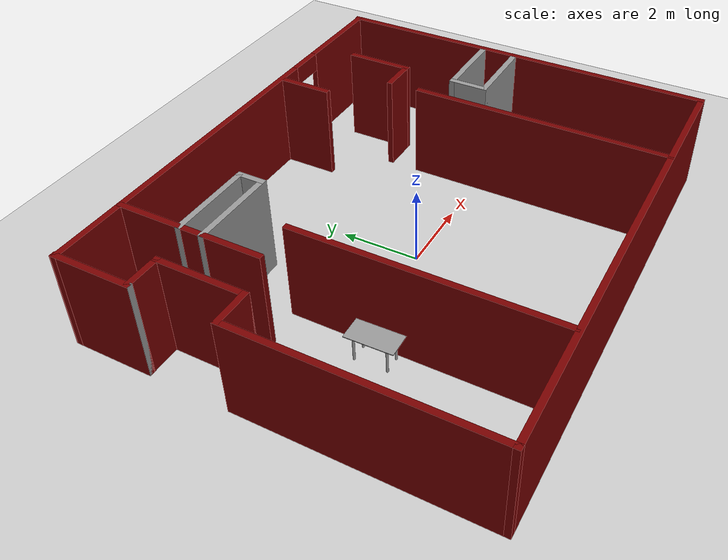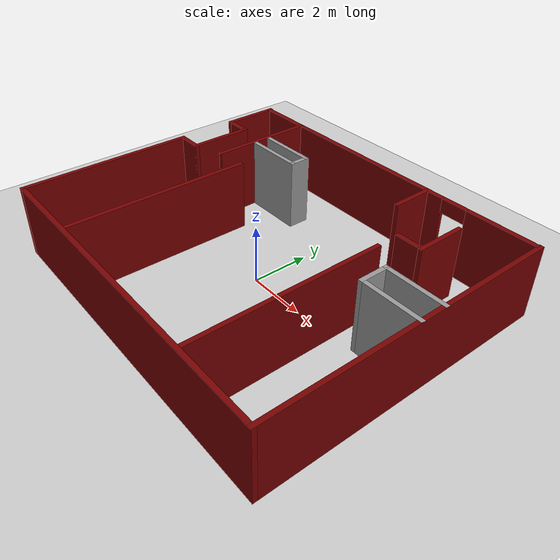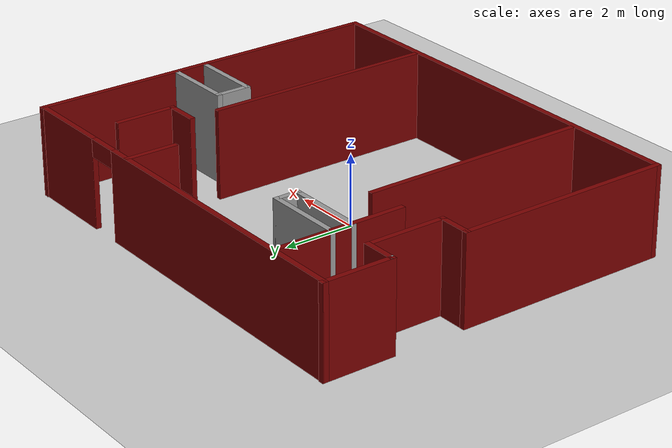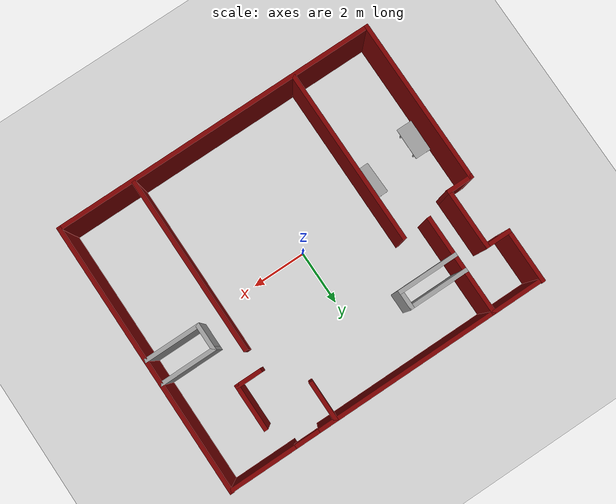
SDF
<sdf version="1.6">
 <world name="default">
  <model name="ground_plane">
   <static>1</static>
   <link name="link">
    <collision name="collision">
     <geometry><plane><normal>0 0 1</normal><size>100 100</size></plane></geometry>
     <surface>
      <contact><collide_bitmask>65535</collide_bitmask></contact>
      <friction><ode><mu>100</mu><mu2>50</mu2></ode></friction>
     </surface>
    </collision>
    <visual name="visual">
     <cast_shadows>0</cast_shadows>
     <geometry><plane><normal>0 0 1</normal><size>100 100</size></plane></geometry>
     <material>
      <script><uri>file://media/materials/scripts/gazebo.material</uri><name>Gazebo/Grey</name></script>
     </material>
    </visual>
   </link>
  </model>
  <model name="my_apartment">
   <pose>0.207005 0.14603 0 0 -0 0</pose>
   <link name="Wall_40">
    <pose>0 5 0 0 -0 0</pose>
    <visual name="Wall_40_Visual_0">
     <pose>-1.71889 0 1.25 0 -0 0</pose>
     <geometry><box><size>8.71223 0.15 2.5</size></box></geometry>
     <material>
      <script><uri>file://media/materials/scripts/gazebo.material</uri><name>Gazebo/Grey</name></script>
      <ambient>0.47451 0 0 1</ambient>
     </material>
     <meta><layer>0</layer></meta>
    </visual>
    <collision name="Wall_40_Collision_0">
     <geometry><box><size>8.71223 0.15 2.5</size></box></geometry>
     <pose>-1.71889 0 1.25 0 -0 0</pose>
    </collision>
    <visual name="Wall_40_Visual_1">
     <pose>4.80611 0 1.25 0 -0 0</pose>
     <geometry><box><size>2.53777 0.15 2.5</size></box></geometry>
     <material>
      <script><uri>file://media/materials/scripts/gazebo.material</uri><name>Gazebo/Grey</name></script>
      <ambient>0.47451 0 0 1</ambient>
     </material>
     <meta><layer>0</layer></meta>
    </visual>
    <collision name="Wall_40_Collision_1">
     <geometry><box><size>2.53777 0.15 2.5</size></box></geometry>
     <pose>4.80611 0 1.25 0 -0 0</pose>
    </collision>
    <visual name="Wall_40_Visual_2">
     <pose>3.08723 0 2.25 0 -0 0</pose>
     <geometry><box><size>0.9 0.15 0.5</size></box></geometry>
     <material>
      <script><uri>file://media/materials/scripts/gazebo.material</uri><name>Gazebo/Grey</name></script>
      <ambient>0.47451 0 0 1</ambient>
     </material>
     <meta><layer>0</layer></meta>
    </visual>
    <collision name="Wall_40_Collision_2">
     <geometry><box><size>0.9 0.15 0.5</size></box></geometry>
     <pose>3.08723 0 2.25 0 -0 0</pose>
    </collision>
   </link>
   <link name="Wall_41">
    <collision name="Wall_41_Collision">
     <geometry><box><size>10.1957 0.15 2.5</size></box></geometry>
     <pose>0 0 1.25 0 -0 0</pose>
    </collision>
    <visual name="Wall_41_Visual">
     <pose>0 0 1.25 0 -0 0</pose>
     <geometry><box><size>10.1957 0.15 2.5</size></box></geometry>
     <material>
      <script><uri>file://media/materials/scripts/gazebo.material</uri><name>Gazebo/Grey</name></script>
      <ambient>0.458824 0 0 1</ambient>
     </material>
     <meta><layer>0</layer></meta>
    </visual>
    <pose>6 0 0 0 0 -1.5708</pose>
   </link>
   <link name="Wall_42">
    <collision name="Wall_42_Collision">
     <geometry><box><size>12.15 0.15 2.5</size></box></geometry>
     <pose>0 0 1.25 0 -0 0</pose>
    </collision>
    <visual name="Wall_42_Visual">
     <pose>0 0 1.25 0 -0 0</pose>
     <geometry><box><size>12.15 0.15 2.5</size></box></geometry>
     <material>
      <script><uri>file://media/materials/scripts/gazebo.material</uri><name>Gazebo/Grey</name></script>
      <ambient>0.47451 0 0 1</ambient>
     </material>
     <meta><layer>0</layer></meta>
    </visual>
    <pose>0 -5.02287 0 0 -0 3.14159</pose>
   </link>
   <link name="Wall_43">
    <collision name="Wall_43_Collision">
     <geometry><box><size>6.15 0.15 2.5</size></box></geometry>
     <pose>0 0 1.25 0 -0 0</pose>
    </collision>
    <visual name="Wall_43_Visual">
     <pose>0 0 1.25 0 -0 0</pose>
     <geometry><box><size>6.15 0.15 2.5</size></box></geometry>
     <material>
      <script><uri>file://media/materials/scripts/gazebo.material</uri><name>Gazebo/Grey</name></script>
      <ambient>0.47451 0 0 1</ambient>
     </material>
     <meta><layer>0</layer></meta>
    </visual>
    <pose>-6 -2.02287 0 0 -0 1.5708</pose>
   </link>
   <link name="Wall_45">
    <collision name="Wall_45_Collision">
     <geometry><box><size>2.04574 0.15 2.5</size></box></geometry>
     <pose>0 0 1.25 0 -0 0</pose>
    </collision>
    <visual name="Wall_45_Visual">
     <pose>0 0 1.25 0 -0 0</pose>
     <geometry><box><size>2.04574 0.15 2.5</size></box></geometry>
     <material>
      <script><uri>file://media/materials/scripts/gazebo.material</uri><name>Gazebo/Grey</name></script>
      <ambient>0.47451 0 0 1</ambient>
     </material>
     <meta><layer>0</layer></meta>
    </visual>
    <pose>-6 4.075 0 0 0 -1.5708</pose>
   </link>
   <link name="Wall_47">
    <collision name="Wall_47_Collision">
     <geometry><box><size>0.15 0.15 2.5</size></box></geometry>
     <pose>0 0 1.25 0 -0 0</pose>
    </collision>
    <visual name="Wall_47_Visual">
     <pose>0 0 1.25 0 -0 0</pose>
     <geometry><box><size>0.15 0.15 2.5</size></box></geometry>
     <material>
      <script><uri>file://media/materials/scripts/gazebo.material</uri><name>Gazebo/Grey</name></script>
      <ambient>1 1 1 1</ambient>
     </material>
     <meta><layer>0</layer></meta>
    </visual>
    <pose>-6 3.12713 0 0 -0 0</pose>
   </link>
   <link name="Wall_51">
    <collision name="Wall_51_Collision">
     <geometry><box><size>1 0.15 2.5</size></box></geometry>
     <pose>0 0 1.25 0 -0 0</pose>
    </collision>
    <visual name="Wall_51_Visual">
     <pose>0 0 1.25 0 -0 0</pose>
     <geometry><box><size>1 0.15 2.5</size></box></geometry>
     <material>
      <script><uri>file://media/materials/scripts/gazebo.material</uri><name>Gazebo/Grey</name></script>
      <ambient>0.47451 0 0 1</ambient>
     </material>
     <meta><layer>0</layer></meta>
    </visual>
    <pose>-5.575 3.12713 0 0 -0 0</pose>
   </link>
   <link name="Wall_52">
    <collision name="Wall_52_Collision">
     <geometry><box><size>2.3 0.15 2.5</size></box></geometry>
     <pose>0 0 1.25 0 -0 0</pose>
    </collision>
    <visual name="Wall_52_Visual">
     <pose>0 0 1.25 0 -0 0</pose>
     <geometry><box><size>2.3 0.15 2.5</size></box></geometry>
     <material>
      <script><uri>file://media/materials/scripts/gazebo.material</uri><name>Gazebo/Grey</name></script>
      <ambient>0.47451 0 0 1</ambient>
     </material>
     <meta><layer>0</layer></meta>
    </visual>
    <pose>-5.15 2.05213 0 0 0 -1.5708</pose>
   </link>
   <link name="Wall_54">
    <collision name="Wall_54_Collision">
     <geometry><box><size>1 0.15 2.5</size></box></geometry>
     <pose>0 0 1.25 0 -0 0</pose>
    </collision>
    <visual name="Wall_54_Visual">
     <pose>0 0 1.25 0 -0 0</pose>
     <geometry><box><size>1 0.15 2.5</size></box></geometry>
     <material>
      <script><uri>file://media/materials/scripts/gazebo.material</uri><name>Gazebo/Grey</name></script>
      <ambient>0.47451 0 0 1</ambient>
     </material>
     <meta><layer>0</layer></meta>
    </visual>
    <pose>-5.575 0.97713 0 0 -0 0</pose>
   </link>
   <link name="Wall_56">
    <collision name="Wall_56_Collision">
     <geometry><box><size>3.75 0.15 2.5</size></box></geometry>
     <pose>0 0 1.25 0 -0 0</pose>
    </collision>
    <visual name="Wall_56_Visual">
     <pose>0 0 1.25 0 -0 0</pose>
     <geometry><box><size>3.75 0.15 2.5</size></box></geometry>
     <material>
      <script><uri>file://media/materials/scripts/gazebo.material</uri><name>Gazebo/Grey</name></script>
      <ambient>0.47451 0 0 1</ambient>
     </material>
     <meta><layer>0</layer></meta>
    </visual>
    <pose>-4.10991 3.17189 0 0 0 -1.5708</pose>
   </link>
   <link name="Wall_58">
    <collision name="Wall_58_Collision">
     <geometry><box><size>2.25 0.15 2.5</size></box></geometry>
     <pose>0 0 1.25 0 -0 0</pose>
    </collision>
    <visual name="Wall_58_Visual">
     <pose>0 0 1.25 0 -0 0</pose>
     <geometry><box><size>2.25 0.15 2.5</size></box></geometry>
     <material>
      <script><uri>file://media/materials/scripts/gazebo.material</uri><name>Gazebo/Grey</name></script>
      <ambient>1 1 1 1</ambient>
     </material>
     <meta><layer>0</layer></meta>
    </visual>
    <pose>-3.05992 3.39189 0 0 -0 0</pose>
   </link>
   <link name="Wall_59">
    <collision name="Wall_59_Collision">
     <geometry><box><size>0.75 0.15 2.5</size></box></geometry>
     <pose>0 0 1.25 0 -0 0</pose>
    </collision>
    <visual name="Wall_59_Visual">
     <pose>0 0 1.25 0 -0 0</pose>
     <geometry><box><size>0.75 0.15 2.5</size></box></geometry>
     <material>
      <script><uri>file://media/materials/scripts/gazebo.material</uri><name>Gazebo/Grey</name></script>
      <ambient>1 1 1 1</ambient>
     </material>
     <meta><layer>0</layer></meta>
    </visual>
    <pose>-2.00991 3.09189 0 0 0 -1.5708</pose>
   </link>
   <link name="Wall_60">
    <collision name="Wall_60_Collision">
     <geometry><box><size>2.25 0.15 2.5</size></box></geometry>
     <pose>0 0 1.25 0 -0 0</pose>
    </collision>
    <visual name="Wall_60_Visual">
     <pose>0 0 1.25 0 -0 0</pose>
     <geometry><box><size>2.25 0.15 2.5</size></box></geometry>
     <material>
      <script><uri>file://media/materials/scripts/gazebo.material</uri><name>Gazebo/Grey</name></script>
      <ambient>1 1 1 1</ambient>
     </material>
     <meta><layer>0</layer></meta>
    </visual>
    <pose>-3.05992 2.79189 0 0 -0 3.14159</pose>
   </link>
   <link name="Wall_62">
    <collision name="Wall_62_Collision">
     <geometry><box><size>6.5 0.15 2.5</size></box></geometry>
     <pose>0 0 1.25 0 -0 0</pose>
    </collision>
    <visual name="Wall_62_Visual">
     <pose>0 0 1.25 0 -0 0</pose>
     <geometry><box><size>6.5 0.15 2.5</size></box></geometry>
     <material>
      <script><uri>file://media/materials/scripts/gazebo.material</uri><name>Gazebo/Grey</name></script>
      <ambient>0.47451 0 0 1</ambient>
     </material>
     <meta><layer>0</layer></meta>
    </visual>
    <pose>-3.076 -1.78087 0 0 0 -1.5708</pose>
   </link>
   <link name="Wall_64">
    <collision name="Wall_64_Collision">
     <geometry><box><size>1.5 0.15 2.5</size></box></geometry>
     <pose>0 0 1.25 0 -0 0</pose>
    </collision>
    <visual name="Wall_64_Visual">
     <pose>0 0 1.25 0 -0 0</pose>
     <geometry><box><size>1.5 0.15 2.5</size></box></geometry>
     <material>
      <script><uri>file://media/materials/scripts/gazebo.material</uri><name>Gazebo/Grey</name></script>
      <ambient>0.47451 0 0 1</ambient>
     </material>
     <meta><layer>0</layer></meta>
    </visual>
    <pose>2 4.31413 0 0 0 -1.5708</pose>
   </link>
   <link name="Wall_66">
    <collision name="Wall_66_Collision">
     <geometry><box><size>1.75 0.15 2.5</size></box></geometry>
     <pose>0 0 1.25 0 -0 0</pose>
    </collision>
    <visual name="Wall_66_Visual">
     <pose>0 0 1.25 0 -0 0</pose>
     <geometry><box><size>1.75 0.15 2.5</size></box></geometry>
     <material>
      <script><uri>file://media/materials/scripts/gazebo.material</uri><name>Gazebo/Grey</name></script>
      <ambient>0.47451 0 0 1</ambient>
     </material>
     <meta><layer>0</layer></meta>
    </visual>
    <pose>4.02154 3.18013 0 0 0 -1.5708</pose>
   </link>
   <link name="Wall_68">
    <collision name="Wall_68_Collision">
     <geometry><box><size>1 0.15 2.5</size></box></geometry>
     <pose>0 0 1.25 0 -0 0</pose>
    </collision>
    <visual name="Wall_68_Visual">
     <pose>0 0 1.25 0 -0 0</pose>
     <geometry><box><size>1 0.15 2.5</size></box></geometry>
     <material>
      <script><uri>file://media/materials/scripts/gazebo.material</uri><name>Gazebo/Grey</name></script>
      <ambient>0.47451 0 0 1</ambient>
     </material>
     <meta><layer>0</layer></meta>
    </visual>
    <pose>3.59653 2.38014 0 0 -0 3.14159</pose>
   </link>
   <link name="Wall_70">
    <collision name="Wall_70_Collision">
     <geometry><box><size>6.7 0.15 2.5</size></box></geometry>
     <pose>0 0 1.25 0 -0 0</pose>
    </collision>
    <visual name="Wall_70_Visual">
     <pose>0 0 1.25 0 -0 0</pose>
     <geometry><box><size>6.7 0.15 2.5</size></box></geometry>
     <material>
      <script><uri>file://media/materials/scripts/gazebo.material</uri><name>Gazebo/Grey</name></script>
      <ambient>0.458824 0 0 1</ambient>
     </material>
     <meta><layer>0</layer></meta>
    </visual>
    <pose>3.17 -1.74787 0 0 0 -1.5708</pose>
   </link>
   <link name="Wall_72">
    <collision name="Wall_72_Collision">
     <geometry><box><size>2.15 0.15 2.5</size></box></geometry>
     <pose>0 0 1.25 0 -0 0</pose>
    </collision>
    <visual name="Wall_72_Visual">
     <pose>0 0 1.25 0 -0 0</pose>
     <geometry><box><size>2.15 0.15 2.5</size></box></geometry>
     <material>
      <script><uri>file://media/materials/scripts/gazebo.material</uri><name>Gazebo/Grey</name></script>
      <ambient>1 1 1 1</ambient>
     </material>
     <meta><layer>0</layer></meta>
    </visual>
    <pose>5 0.97713 0 0 -0 3.14159</pose>
   </link>
   <link name="Wall_73">
    <collision name="Wall_73_Collision">
     <geometry><box><size>1.05 0.15 2.5</size></box></geometry>
     <pose>0 0 1.25 0 -0 0</pose>
    </collision>
    <visual name="Wall_73_Visual">
     <pose>0 0 1.25 0 -0 0</pose>
     <geometry><box><size>1.05 0.15 2.5</size></box></geometry>
     <material>
      <script><uri>file://media/materials/scripts/gazebo.material</uri><name>Gazebo/Grey</name></script>
      <ambient>1 1 1 1</ambient>
     </material>
     <meta><layer>0</layer></meta>
    </visual>
    <pose>4 0.52713 0 0 0 -1.5708</pose>
   </link>
   <link name="Wall_74">
    <collision name="Wall_74_Collision">
     <geometry><box><size>2.15 0.15 2.5</size></box></geometry>
     <pose>0 0 1.25 0 -0 0</pose>
    </collision>
    <visual name="Wall_74_Visual">
     <pose>0 0 1.25 0 -0 0</pose>
     <geometry><box><size>2.15 0.15 2.5</size></box></geometry>
     <material>
      <script><uri>file://media/materials/scripts/gazebo.material</uri><name>Gazebo/Grey</name></script>
      <ambient>1 1 1 1</ambient>
     </material>
     <meta><layer>0</layer></meta>
    </visual>
    <pose>5 0.07713 0 0 -0 0</pose>
   </link>
   <static>1</static>
  </model>
  <model name="desk_1">
   <link name="link_0">
    <pose>-0.4 -0.2 -0.068 0 -0 0</pose>
    <inertial>
     <mass>1</mass>
     <inertia><ixx>0.145833</ixx><ixy>0</ixy><ixz>0</ixz><iyy>0.145833</iyy><iyz>0</iyz><izz>0.125</izz></inertia>
    </inertial>
    <visual name="visual">
     <geometry><cylinder><radius>0.03</radius><length>0.67</length></cylinder></geometry>
     <material>
      <lighting>1</lighting>
      <script><uri>file://media/materials/scripts/gazebo.material</uri><name>Gazebo/Grey</name></script>
      <shader type="pixel"><normal_map>__default__</normal_map></shader>
      <ambient>0.3 0.3 0.3 1</ambient>
      <diffuse>0.7 0.7 0.7 1</diffuse>
      <specular>0.01 0.01 0.01 1</specular>
      <emissive>0 0 0 1</emissive>
     </material>
    </visual>
    <collision name="collision">
     <geometry><cylinder><radius>0.03</radius><length>0.67</length></cylinder></geometry>
     <surface>
      <friction>
       <ode><mu>1</mu><mu2>1</mu2><fdir1>0 0 0</fdir1><slip1>0</slip1><slip2>0</slip2></ode>
       <torsional>
        <coefficient>1</coefficient>
        <patch_radius>0</patch_radius>
        <surface_radius>0</surface_radius>
        <use_patch_radius>1</use_patch_radius>
        <ode><slip>0</slip></ode>
       </torsional>
      </friction>
      <bounce><restitution_coefficient>0</restitution_coefficient><threshold>1e+06</threshold></bounce>
      <contact>
       <collide_without_contact>0</collide_without_contact>
       <collide_without_contact_bitmask>1</collide_without_contact_bitmask>
       <collide_bitmask>1</collide_bitmask>
       <ode>
        <soft_cfm>0</soft_cfm>
        <soft_erp>0.2</soft_erp>
        <kp>1e+13</kp>
        <kd>1</kd>
        <max_vel>0.01</max_vel>
        <min_depth>0</min_depth>
       </ode>
       <bullet>
        <split_impulse>1</split_impulse>
        <split_impulse_penetration_threshold>-0.01</split_impulse_penetration_threshold>
        <soft_cfm>0</soft_cfm>
        <soft_erp>0.2</soft_erp>
        <kp>1e+13</kp>
        <kd>1</kd>
       </bullet>
      </contact>
     </surface>
    </collision>
   </link>
   <link name="link_0_clone">
    <pose>-0.4 0.2 -0.068 0 -0 0</pose>
    <inertial>
     <mass>1</mass>
     <inertia><ixx>0.145833</ixx><ixy>0</ixy><ixz>0</ixz><iyy>0.145833</iyy><iyz>0</iyz><izz>0.125</izz></inertia>
    </inertial>
    <visual name="visual">
     <geometry><cylinder><radius>0.03</radius><length>0.67</length></cylinder></geometry>
     <material>
      <lighting>1</lighting>
      <script><uri>file://media/materials/scripts/gazebo.material</uri><name>Gazebo/Grey</name></script>
      <shader type="pixel"><normal_map>__default__</normal_map></shader>
      <ambient>0.3 0.3 0.3 1</ambient>
      <diffuse>0.7 0.7 0.7 1</diffuse>
      <specular>0.01 0.01 0.01 1</specular>
      <emissive>0 0 0 1</emissive>
     </material>
    </visual>
    <collision name="collision">
     <geometry><cylinder><radius>0.03</radius><length>0.67</length></cylinder></geometry>
     <surface>
      <friction>
       <ode><mu>1</mu><mu2>1</mu2><fdir1>0 0 0</fdir1><slip1>0</slip1><slip2>0</slip2></ode>
       <torsional>
        <coefficient>1</coefficient>
        <patch_radius>0</patch_radius>
        <surface_radius>0</surface_radius>
        <use_patch_radius>1</use_patch_radius>
        <ode><slip>0</slip></ode>
       </torsional>
      </friction>
      <bounce><restitution_coefficient>0</restitution_coefficient><threshold>1e+06</threshold></bounce>
      <contact>
       <collide_without_contact>0</collide_without_contact>
       <collide_without_contact_bitmask>1</collide_without_contact_bitmask>
       <collide_bitmask>1</collide_bitmask>
       <ode>
        <soft_cfm>0</soft_cfm>
        <soft_erp>0.2</soft_erp>
        <kp>1e+13</kp>
        <kd>1</kd>
        <max_vel>0.01</max_vel>
        <min_depth>0</min_depth>
       </ode>
       <bullet>
        <split_impulse>1</split_impulse>
        <split_impulse_penetration_threshold>-0.01</split_impulse_penetration_threshold>
        <soft_cfm>0</soft_cfm>
        <soft_erp>0.2</soft_erp>
        <kp>1e+13</kp>
        <kd>1</kd>
       </bullet>
      </contact>
     </surface>
    </collision>
   </link>
   <link name="link_0_clone_0">
    <pose>0.4 0.2 -0.068 0 -0 0</pose>
    <inertial>
     <mass>1</mass>
     <inertia><ixx>0.145833</ixx><ixy>0</ixy><ixz>0</ixz><iyy>0.145833</iyy><iyz>0</iyz><izz>0.125</izz></inertia>
    </inertial>
    <visual name="visual">
     <geometry><cylinder><radius>0.03</radius><length>0.67</length></cylinder></geometry>
     <material>
      <lighting>1</lighting>
      <script><uri>file://media/materials/scripts/gazebo.material</uri><name>Gazebo/Grey</name></script>
      <shader type="pixel"><normal_map>__default__</normal_map></shader>
      <ambient>0.3 0.3 0.3 1</ambient>
      <diffuse>0.7 0.7 0.7 1</diffuse>
      <specular>0.01 0.01 0.01 1</specular>
      <emissive>0 0 0 1</emissive>
     </material>
    </visual>
    <collision name="collision">
     <geometry><cylinder><radius>0.03</radius><length>0.67</length></cylinder></geometry>
     <surface>
      <friction>
       <ode><mu>1</mu><mu2>1</mu2><fdir1>0 0 0</fdir1><slip1>0</slip1><slip2>0</slip2></ode>
       <torsional>
        <coefficient>1</coefficient>
        <patch_radius>0</patch_radius>
        <surface_radius>0</surface_radius>
        <use_patch_radius>1</use_patch_radius>
        <ode><slip>0</slip></ode>
       </torsional>
      </friction>
      <bounce><restitution_coefficient>0</restitution_coefficient><threshold>1e+06</threshold></bounce>
      <contact>
       <collide_without_contact>0</collide_without_contact>
       <collide_without_contact_bitmask>1</collide_without_contact_bitmask>
       <collide_bitmask>1</collide_bitmask>
       <ode>
        <soft_cfm>0</soft_cfm>
        <soft_erp>0.2</soft_erp>
        <kp>1e+13</kp>
        <kd>1</kd>
        <max_vel>0.01</max_vel>
        <min_depth>0</min_depth>
       </ode>
       <bullet>
        <split_impulse>1</split_impulse>
        <split_impulse_penetration_threshold>-0.01</split_impulse_penetration_threshold>
        <soft_cfm>0</soft_cfm>
        <soft_erp>0.2</soft_erp>
        <kp>1e+13</kp>
        <kd>1</kd>
       </bullet>
      </contact>
     </surface>
    </collision>
   </link>
   <link name="link_0_clone_1">
    <pose>0.4 -0.2 -0.068 0 -0 0</pose>
    <inertial>
     <mass>1</mass>
     <inertia><ixx>0.145833</ixx><ixy>0</ixy><ixz>0</ixz><iyy>0.145833</iyy><iyz>0</iyz><izz>0.125</izz></inertia>
    </inertial>
    <visual name="visual">
     <geometry><cylinder><radius>0.03</radius><length>0.67</length></cylinder></geometry>
     <material>
      <lighting>1</lighting>
      <script><uri>file://media/materials/scripts/gazebo.material</uri><name>Gazebo/Grey</name></script>
      <shader type="pixel"><normal_map>__default__</normal_map></shader>
      <ambient>0.3 0.3 0.3 1</ambient>
      <diffuse>0.7 0.7 0.7 1</diffuse>
      <specular>0.01 0.01 0.01 1</specular>
      <emissive>0 0 0 1</emissive>
     </material>
    </visual>
    <collision name="collision">
     <geometry><cylinder><radius>0.03</radius><length>0.67</length></cylinder></geometry>
     <surface>
      <friction>
       <ode><mu>1</mu><mu2>1</mu2><fdir1>0 0 0</fdir1><slip1>0</slip1><slip2>0</slip2></ode>
       <torsional>
        <coefficient>1</coefficient>
        <patch_radius>0</patch_radius>
        <surface_radius>0</surface_radius>
        <use_patch_radius>1</use_patch_radius>
        <ode><slip>0</slip></ode>
       </torsional>
      </friction>
      <bounce><restitution_coefficient>0</restitution_coefficient><threshold>1e+06</threshold></bounce>
      <contact>
       <collide_without_contact>0</collide_without_contact>
       <collide_without_contact_bitmask>1</collide_without_contact_bitmask>
       <collide_bitmask>1</collide_bitmask>
       <ode>
        <soft_cfm>0</soft_cfm>
        <soft_erp>0.2</soft_erp>
        <kp>1e+13</kp>
        <kd>1</kd>
        <max_vel>0.01</max_vel>
        <min_depth>0</min_depth>
       </ode>
       <bullet>
        <split_impulse>1</split_impulse>
        <split_impulse_penetration_threshold>-0.01</split_impulse_penetration_threshold>
        <soft_cfm>0</soft_cfm>
        <soft_erp>0.2</soft_erp>
        <kp>1e+13</kp>
        <kd>1</kd>
       </bullet>
      </contact>
     </surface>
    </collision>
   </link>
   <link name="link_1">
    <pose>0 0 0.272 0 -0 0</pose>
    <inertial>
     <mass>1</mass>
     <inertia>
      <ixx>0.166667</ixx>
      <ixy>0</ixy>
      <ixz>0</ixz>
      <iyy>0.166667</iyy>
      <iyz>0</iyz>
      <izz>0.166667</izz>
     </inertia>
    </inertial>
    <visual name="visual">
     <geometry><box><size>1.2 0.6 0.02</size></box></geometry>
     <material>
      <lighting>1</lighting>
      <script><uri>file://media/materials/scripts/gazebo.material</uri><name>Gazebo/Grey</name></script>
      <shader type="pixel"><normal_map>__default__</normal_map></shader>
      <ambient>0.3 0.3 0.3 1</ambient>
      <diffuse>0.7 0.7 0.7 1</diffuse>
      <specular>0.01 0.01 0.01 1</specular>
      <emissive>0 0 0 1</emissive>
     </material>
    </visual>
    <collision name="collision">
     <geometry><box><size>1.2 0.6 0.02</size></box></geometry>
     <surface>
      <friction>
       <ode><mu>1</mu><mu2>1</mu2><fdir1>0 0 0</fdir1><slip1>0</slip1><slip2>0</slip2></ode>
       <torsional>
        <coefficient>1</coefficient>
        <patch_radius>0</patch_radius>
        <surface_radius>0</surface_radius>
        <use_patch_radius>1</use_patch_radius>
        <ode><slip>0</slip></ode>
       </torsional>
      </friction>
      <bounce><restitution_coefficient>0</restitution_coefficient><threshold>1e+06</threshold></bounce>
      <contact>
       <collide_without_contact>0</collide_without_contact>
       <collide_without_contact_bitmask>1</collide_without_contact_bitmask>
       <collide_bitmask>1</collide_bitmask>
       <ode>
        <soft_cfm>0</soft_cfm>
        <soft_erp>0.2</soft_erp>
        <kp>1e+13</kp>
        <kd>1</kd>
        <max_vel>0.01</max_vel>
        <min_depth>0</min_depth>
       </ode>
       <bullet>
        <split_impulse>1</split_impulse>
        <split_impulse_penetration_threshold>-0.01</split_impulse_penetration_threshold>
        <soft_cfm>0</soft_cfm>
        <soft_erp>0.2</soft_erp>
        <kp>1e+13</kp>
        <kd>1</kd>
       </bullet>
      </contact>
     </surface>
    </collision>
   </link>
   <joint name="link_1_JOINT_0" type="fixed">
    <parent>link_1</parent>
    <child>link_0</child>
    <physics>
     <ode><limit><cfm>0</cfm><erp>0.2</erp></limit><suspension><cfm>0</cfm><erp>0.2</erp></suspension></ode>
    </physics>
   </joint>
   <joint name="link_1_JOINT_1" type="fixed">
    <parent>link_1</parent>
    <child>link_0_clone</child>
    <physics>
     <ode><limit><cfm>0</cfm><erp>0.2</erp></limit><suspension><cfm>0</cfm><erp>0.2</erp></suspension></ode>
    </physics>
   </joint>
   <joint name="link_1_JOINT_2" type="fixed">
    <parent>link_1</parent>
    <child>link_0_clone_0</child>
    <physics>
     <ode><limit><cfm>0</cfm><erp>0.2</erp></limit><suspension><cfm>0</cfm><erp>0.2</erp></suspension></ode>
    </physics>
   </joint>
   <joint name="link_1_JOINT_3" type="fixed">
    <parent>link_1</parent>
    <child>link_0_clone_1</child>
    <physics>
     <ode><limit><cfm>0</cfm><erp>0.2</erp></limit><suspension><cfm>0</cfm><erp>0.2</erp></suspension></ode>
    </physics>
   </joint>
   <static>0</static>
   <pose>-5.31885 -1.11396 0.403 -1e-06 0 -1.58024</pose>
  </model>
  <model name="desk_2">
   <link name="link_0">
    <pose>-0.4 -0.2 -0.068 0 -0 0</pose>
    <inertial>
     <mass>1</mass>
     <inertia><ixx>0.145833</ixx><ixy>0</ixy><ixz>0</ixz><iyy>0.145833</iyy><iyz>0</iyz><izz>0.125</izz></inertia>
    </inertial>
    <visual name="visual">
     <geometry><cylinder><radius>0.03</radius><length>0.67</length></cylinder></geometry>
     <material>
      <lighting>1</lighting>
      <script><uri>file://media/materials/scripts/gazebo.material</uri><name>Gazebo/Grey</name></script>
      <shader type="pixel"><normal_map>__default__</normal_map></shader>
      <ambient>0.3 0.3 0.3 1</ambient>
      <diffuse>0.7 0.7 0.7 1</diffuse>
      <specular>0.01 0.01 0.01 1</specular>
      <emissive>0 0 0 1</emissive>
     </material>
    </visual>
    <collision name="collision">
     <geometry><cylinder><radius>0.03</radius><length>0.67</length></cylinder></geometry>
     <surface>
      <friction>
       <ode><mu>1</mu><mu2>1</mu2><fdir1>0 0 0</fdir1><slip1>0</slip1><slip2>0</slip2></ode>
       <torsional>
        <coefficient>1</coefficient>
        <patch_radius>0</patch_radius>
        <surface_radius>0</surface_radius>
        <use_patch_radius>1</use_patch_radius>
        <ode><slip>0</slip></ode>
       </torsional>
      </friction>
      <bounce><restitution_coefficient>0</restitution_coefficient><threshold>1e+06</threshold></bounce>
      <contact>
       <collide_without_contact>0</collide_without_contact>
       <collide_without_contact_bitmask>1</collide_without_contact_bitmask>
       <collide_bitmask>1</collide_bitmask>
       <ode>
        <soft_cfm>0</soft_cfm>
        <soft_erp>0.2</soft_erp>
        <kp>1e+13</kp>
        <kd>1</kd>
        <max_vel>0.01</max_vel>
        <min_depth>0</min_depth>
       </ode>
       <bullet>
        <split_impulse>1</split_impulse>
        <split_impulse_penetration_threshold>-0.01</split_impulse_penetration_threshold>
        <soft_cfm>0</soft_cfm>
        <soft_erp>0.2</soft_erp>
        <kp>1e+13</kp>
        <kd>1</kd>
       </bullet>
      </contact>
     </surface>
    </collision>
   </link>
   <link name="link_0_clone">
    <pose>-0.4 0.2 -0.068 0 -0 0</pose>
    <inertial>
     <mass>1</mass>
     <inertia><ixx>0.145833</ixx><ixy>0</ixy><ixz>0</ixz><iyy>0.145833</iyy><iyz>0</iyz><izz>0.125</izz></inertia>
    </inertial>
    <visual name="visual">
     <geometry><cylinder><radius>0.03</radius><length>0.67</length></cylinder></geometry>
     <material>
      <lighting>1</lighting>
      <script><uri>file://media/materials/scripts/gazebo.material</uri><name>Gazebo/Grey</name></script>
      <shader type="pixel"><normal_map>__default__</normal_map></shader>
      <ambient>0.3 0.3 0.3 1</ambient>
      <diffuse>0.7 0.7 0.7 1</diffuse>
      <specular>0.01 0.01 0.01 1</specular>
      <emissive>0 0 0 1</emissive>
     </material>
    </visual>
    <collision name="collision">
     <geometry><cylinder><radius>0.03</radius><length>0.67</length></cylinder></geometry>
     <surface>
      <friction>
       <ode><mu>1</mu><mu2>1</mu2><fdir1>0 0 0</fdir1><slip1>0</slip1><slip2>0</slip2></ode>
       <torsional>
        <coefficient>1</coefficient>
        <patch_radius>0</patch_radius>
        <surface_radius>0</surface_radius>
        <use_patch_radius>1</use_patch_radius>
        <ode><slip>0</slip></ode>
       </torsional>
      </friction>
      <bounce><restitution_coefficient>0</restitution_coefficient><threshold>1e+06</threshold></bounce>
      <contact>
       <collide_without_contact>0</collide_without_contact>
       <collide_without_contact_bitmask>1</collide_without_contact_bitmask>
       <collide_bitmask>1</collide_bitmask>
       <ode>
        <soft_cfm>0</soft_cfm>
        <soft_erp>0.2</soft_erp>
        <kp>1e+13</kp>
        <kd>1</kd>
        <max_vel>0.01</max_vel>
        <min_depth>0</min_depth>
       </ode>
       <bullet>
        <split_impulse>1</split_impulse>
        <split_impulse_penetration_threshold>-0.01</split_impulse_penetration_threshold>
        <soft_cfm>0</soft_cfm>
        <soft_erp>0.2</soft_erp>
        <kp>1e+13</kp>
        <kd>1</kd>
       </bullet>
      </contact>
     </surface>
    </collision>
   </link>
   <link name="link_0_clone_0">
    <pose>0.4 0.2 -0.068 0 -0 0</pose>
    <inertial>
     <mass>1</mass>
     <inertia><ixx>0.145833</ixx><ixy>0</ixy><ixz>0</ixz><iyy>0.145833</iyy><iyz>0</iyz><izz>0.125</izz></inertia>
    </inertial>
    <visual name="visual">
     <geometry><cylinder><radius>0.03</radius><length>0.67</length></cylinder></geometry>
     <material>
      <lighting>1</lighting>
      <script><uri>file://media/materials/scripts/gazebo.material</uri><name>Gazebo/Grey</name></script>
      <shader type="pixel"><normal_map>__default__</normal_map></shader>
      <ambient>0.3 0.3 0.3 1</ambient>
      <diffuse>0.7 0.7 0.7 1</diffuse>
      <specular>0.01 0.01 0.01 1</specular>
      <emissive>0 0 0 1</emissive>
     </material>
    </visual>
    <collision name="collision">
     <geometry><cylinder><radius>0.03</radius><length>0.67</length></cylinder></geometry>
     <surface>
      <friction>
       <ode><mu>1</mu><mu2>1</mu2><fdir1>0 0 0</fdir1><slip1>0</slip1><slip2>0</slip2></ode>
       <torsional>
        <coefficient>1</coefficient>
        <patch_radius>0</patch_radius>
        <surface_radius>0</surface_radius>
        <use_patch_radius>1</use_patch_radius>
        <ode><slip>0</slip></ode>
       </torsional>
      </friction>
      <bounce><restitution_coefficient>0</restitution_coefficient><threshold>1e+06</threshold></bounce>
      <contact>
       <collide_without_contact>0</collide_without_contact>
       <collide_without_contact_bitmask>1</collide_without_contact_bitmask>
       <collide_bitmask>1</collide_bitmask>
       <ode>
        <soft_cfm>0</soft_cfm>
        <soft_erp>0.2</soft_erp>
        <kp>1e+13</kp>
        <kd>1</kd>
        <max_vel>0.01</max_vel>
        <min_depth>0</min_depth>
       </ode>
       <bullet>
        <split_impulse>1</split_impulse>
        <split_impulse_penetration_threshold>-0.01</split_impulse_penetration_threshold>
        <soft_cfm>0</soft_cfm>
        <soft_erp>0.2</soft_erp>
        <kp>1e+13</kp>
        <kd>1</kd>
       </bullet>
      </contact>
     </surface>
    </collision>
   </link>
   <link name="link_0_clone_1">
    <pose>0.4 -0.2 -0.068 0 -0 0</pose>
    <inertial>
     <mass>1</mass>
     <inertia><ixx>0.145833</ixx><ixy>0</ixy><ixz>0</ixz><iyy>0.145833</iyy><iyz>0</iyz><izz>0.125</izz></inertia>
    </inertial>
    <visual name="visual">
     <geometry><cylinder><radius>0.03</radius><length>0.67</length></cylinder></geometry>
     <material>
      <lighting>1</lighting>
      <script><uri>file://media/materials/scripts/gazebo.material</uri><name>Gazebo/Grey</name></script>
      <shader type="pixel"><normal_map>__default__</normal_map></shader>
      <ambient>0.3 0.3 0.3 1</ambient>
      <diffuse>0.7 0.7 0.7 1</diffuse>
      <specular>0.01 0.01 0.01 1</specular>
      <emissive>0 0 0 1</emissive>
     </material>
    </visual>
    <collision name="collision">
     <geometry><cylinder><radius>0.03</radius><length>0.67</length></cylinder></geometry>
     <surface>
      <friction>
       <ode><mu>1</mu><mu2>1</mu2><fdir1>0 0 0</fdir1><slip1>0</slip1><slip2>0</slip2></ode>
       <torsional>
        <coefficient>1</coefficient>
        <patch_radius>0</patch_radius>
        <surface_radius>0</surface_radius>
        <use_patch_radius>1</use_patch_radius>
        <ode><slip>0</slip></ode>
       </torsional>
      </friction>
      <bounce><restitution_coefficient>0</restitution_coefficient><threshold>1e+06</threshold></bounce>
      <contact>
       <collide_without_contact>0</collide_without_contact>
       <collide_without_contact_bitmask>1</collide_without_contact_bitmask>
       <collide_bitmask>1</collide_bitmask>
       <ode>
        <soft_cfm>0</soft_cfm>
        <soft_erp>0.2</soft_erp>
        <kp>1e+13</kp>
        <kd>1</kd>
        <max_vel>0.01</max_vel>
        <min_depth>0</min_depth>
       </ode>
       <bullet>
        <split_impulse>1</split_impulse>
        <split_impulse_penetration_threshold>-0.01</split_impulse_penetration_threshold>
        <soft_cfm>0</soft_cfm>
        <soft_erp>0.2</soft_erp>
        <kp>1e+13</kp>
        <kd>1</kd>
       </bullet>
      </contact>
     </surface>
    </collision>
   </link>
   <link name="link_1">
    <pose>0 0 0.272 0 -0 0</pose>
    <inertial>
     <mass>1</mass>
     <inertia>
      <ixx>0.166667</ixx>
      <ixy>0</ixy>
      <ixz>0</ixz>
      <iyy>0.166667</iyy>
      <iyz>0</iyz>
      <izz>0.166667</izz>
     </inertia>
    </inertial>
    <visual name="visual">
     <geometry><box><size>1.2 0.6 0.02</size></box></geometry>
     <material>
      <lighting>1</lighting>
      <script><uri>file://media/materials/scripts/gazebo.material</uri><name>Gazebo/Grey</name></script>
      <shader type="pixel"><normal_map>__default__</normal_map></shader>
      <ambient>0.3 0.3 0.3 1</ambient>
      <diffuse>0.7 0.7 0.7 1</diffuse>
      <specular>0.01 0.01 0.01 1</specular>
      <emissive>0 0 0 1</emissive>
     </material>
    </visual>
    <collision name="collision">
     <geometry><box><size>1.2 0.6 0.02</size></box></geometry>
     <surface>
      <friction>
       <ode><mu>1</mu><mu2>1</mu2><fdir1>0 0 0</fdir1><slip1>0</slip1><slip2>0</slip2></ode>
       <torsional>
        <coefficient>1</coefficient>
        <patch_radius>0</patch_radius>
        <surface_radius>0</surface_radius>
        <use_patch_radius>1</use_patch_radius>
        <ode><slip>0</slip></ode>
       </torsional>
      </friction>
      <bounce><restitution_coefficient>0</restitution_coefficient><threshold>1e+06</threshold></bounce>
      <contact>
       <collide_without_contact>0</collide_without_contact>
       <collide_without_contact_bitmask>1</collide_without_contact_bitmask>
       <collide_bitmask>1</collide_bitmask>
       <ode>
        <soft_cfm>0</soft_cfm>
        <soft_erp>0.2</soft_erp>
        <kp>1e+13</kp>
        <kd>1</kd>
        <max_vel>0.01</max_vel>
        <min_depth>0</min_depth>
       </ode>
       <bullet>
        <split_impulse>1</split_impulse>
        <split_impulse_penetration_threshold>-0.01</split_impulse_penetration_threshold>
        <soft_cfm>0</soft_cfm>
        <soft_erp>0.2</soft_erp>
        <kp>1e+13</kp>
        <kd>1</kd>
       </bullet>
      </contact>
     </surface>
    </collision>
   </link>
   <joint name="link_1_JOINT_0" type="fixed">
    <parent>link_1</parent>
    <child>link_0</child>
    <physics>
     <ode><limit><cfm>0</cfm><erp>0.2</erp></limit><suspension><cfm>0</cfm><erp>0.2</erp></suspension></ode>
    </physics>
   </joint>
   <joint name="link_1_JOINT_1" type="fixed">
    <parent>link_1</parent>
    <child>link_0_clone</child>
    <physics>
     <ode><limit><cfm>0</cfm><erp>0.2</erp></limit><suspension><cfm>0</cfm><erp>0.2</erp></suspension></ode>
    </physics>
   </joint>
   <joint name="link_1_JOINT_2" type="fixed">
    <parent>link_1</parent>
    <child>link_0_clone_0</child>
    <physics>
     <ode><limit><cfm>0</cfm><erp>0.2</erp></limit><suspension><cfm>0</cfm><erp>0.2</erp></suspension></ode>
    </physics>
   </joint>
   <joint name="link_1_JOINT_3" type="fixed">
    <parent>link_1</parent>
    <child>link_0_clone_1</child>
    <physics>
     <ode><limit><cfm>0</cfm><erp>0.2</erp></limit><suspension><cfm>0</cfm><erp>0.2</erp></suspension></ode>
    </physics>
   </joint>
   <static>0</static>
   <pose>-3.26353 -0.720652 0.402999 0 2e-06 -1.54705</pose>
  </model>
 </world>
</sdf>
